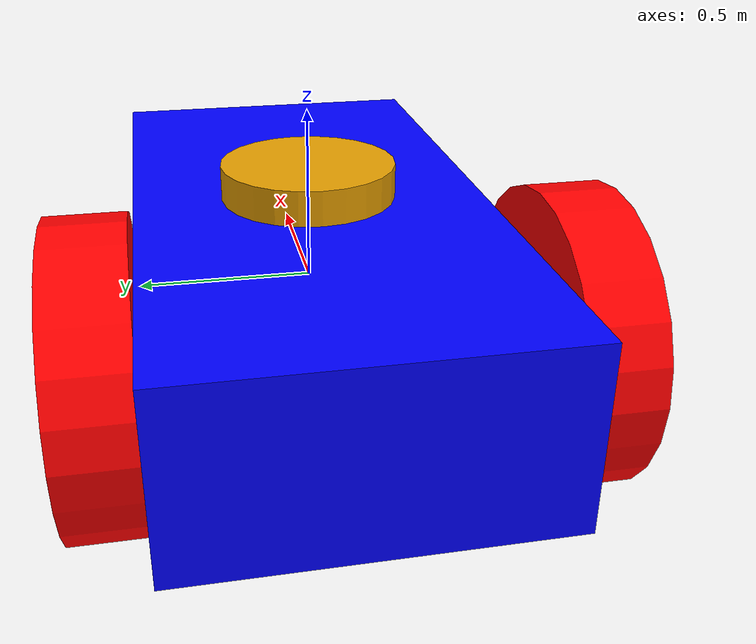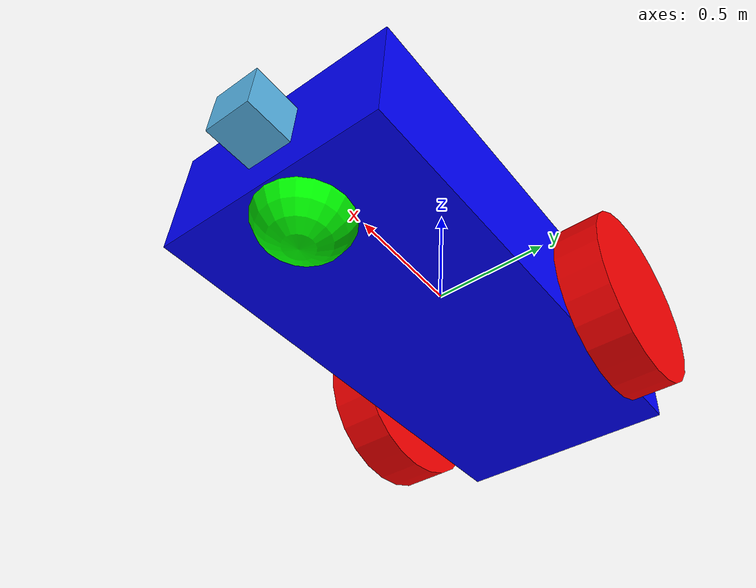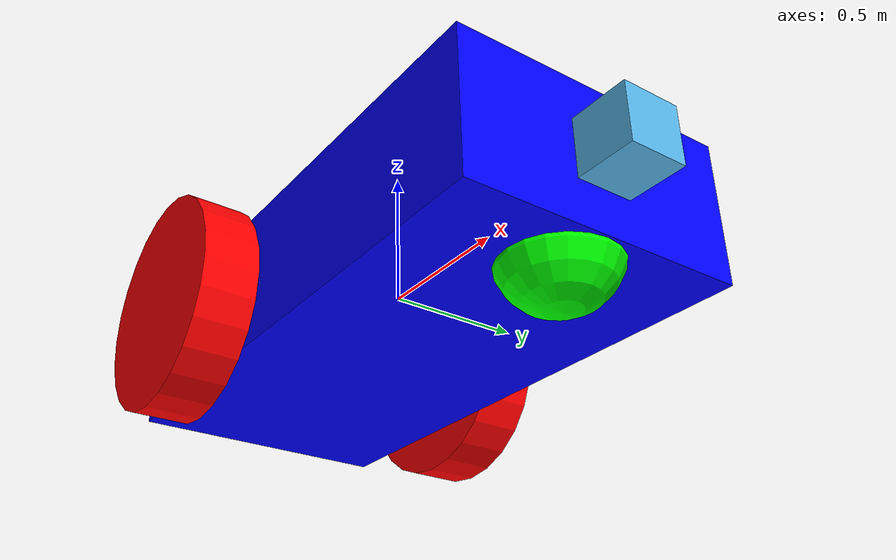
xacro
<robot xmlns:xacro="http://www.ros.org/wiki/xacro" name="rover_base2">

    <xacro:property name="x_rov" value="2.0" />
    <xacro:property name="y_rov" value="1.0" />
    <xacro:property name="z_rov" value="0.5" />

    <xacro:arg name="robot_name" default="" />

    <material name="blue">
      <color rgba="0.0 0.0 1.0 1" />
    </material>
    <material name="red">
      <color rgba="1.0 0.0 0.0 1" />
    </material>
    <material name="green">
      <color rgba="0.0 1.0 0.0 1" />
    </material>

    <link name="base_footprint" />

    <joint name="$(arg robot_name)base_link_to_chassis" type="fixed">
        <child link="base_footprint" />
        <parent link="$(arg robot_name)chassis" />
        <origin xyz="0 0 0 " rpy="0 0 0" />
    </joint>

    <link name="$(arg robot_name)chassis">
        <inertial>
            <mass value="1.14395" />
            <inertia ixx="0.126164" ixy="0" ixz="0" iyy="0.416519" iyz="0" izz="0.481014" />
        </inertial>
        <visual name="visual">
            <geometry>
                <box size="${x_rov} ${y_rov} ${z_rov}" />
            </geometry>
            <material name="blue" />
        </visual>
        <collision name="collision">
            <geometry>
                <box size="${x_rov} ${y_rov} ${z_rov}" />
            </geometry>
        </collision>
    </link>

    <xacro:macro name="rear_wheel" params="prefix reflect">
        <link name="${prefix}_wheel">
            <inertial>
                <mass value="2" />
                <inertia ixx="0.145833" ixy="0" ixz="0" iyy="0.145833" iyz="0" izz="0.125" />
            </inertial>
            <visual>
                <geometry>
                    <cylinder radius="${z_rov*4/5}" length="${y_rov/5}" />
                </geometry>
            <material name="red" />
            </visual>
            <collision name="collision">
                <geometry>
                    <cylinder radius="${z_rov*4/5}" length="${y_rov/5}" />
                </geometry>
            </collision>
        </link>

        <joint name="${prefix}_wheel_joint" type="continuous">
            <parent link="$(arg robot_name)chassis" />
            <child link="${prefix}_wheel" />
            <origin xyz="${-x_rov/4} ${reflect*y_rov*(1/2+1/10)} 0 " rpy="${-pi/2} 0 0" />
            <axis xyz="0 0 1" />
        </joint>

    </xacro:macro>

    <xacro:rear_wheel prefix="$(arg robot_name)left" reflect="1" />
    <xacro:rear_wheel prefix="$(arg robot_name)right" reflect="-1" />

    <link name="$(arg robot_name)caster">
        <inertial>
            <mass value="1" />
            <inertia ixx="0.1" ixy="0" ixz="0" iyy="0.1" iyz="0" izz="0.1" />
        </inertial>
        <visual name="visual">
            <geometry>
                <sphere radius="${z_rov*2/5}" />
            </geometry>
            <material name="green" />
        </visual>
        <collision name="collision">
            <geometry>
                <sphere radius="${z_rov*2/5}" />
            </geometry>
        </collision>
    </link>

    <link name="$(arg robot_name)inter1">
        <inertial>
            <mass value="0.01" />
            <inertia ixx="0.0000001" ixy="0" ixz="0" iyy="0.0000001" iyz="0" izz="0.0000001" />
        </inertial>
    </link>

    <link name="$(arg robot_name)inter2">
        <inertial>
            <mass value="0.01" />
            <inertia ixx="0.0000001" ixy="0" ixz="0" iyy="0.0000001" iyz="0" izz="0.0000001" />
        </inertial>
    </link>

    <joint name="$(arg robot_name)caster_x" type="continuous">
        <origin xyz="${x_rov*0.4}  0 ${-z_rov*2/5}" rpy="0 0 0" />
        <parent link="$(arg robot_name)chassis" />
        <child link="$(arg robot_name)inter1" />
        <axis xyz="1 0 0" />
    </joint>

    <joint name="$(arg robot_name)caster_y" type="continuous">
        <parent link="$(arg robot_name)inter1" />
        <child link="$(arg robot_name)inter2" />
        <axis xyz="0 1 0" />
    </joint>

    <joint name="$(arg robot_name)caster_z" type="continuous">
        <parent link="$(arg robot_name)inter2" />
        <child link="$(arg robot_name)caster" />
        <axis xyz="0 0 1" />
    </joint>

    <link name="$(arg robot_name)imu_link">

        <inertial>
            <mass value="0.01" />
            <inertia ixx="0.0000001" ixy="0" ixz="0" iyy="0.0000001" iyz="0" izz="0.0000001" />
        </inertial>

        <visual>
            <geometry>
                <box size="0.1 0.1 0.1" />
            </geometry>
        </visual>

        <collision>
            <geometry>
                <box size="0.1 0.1 0.1" />
            </geometry>
        </collision>

    </link>

    <joint name="$(arg robot_name)imu_joint" type="fixed">
        <parent link="$(arg robot_name)chassis" />
        <child link="$(arg robot_name)imu_link" />
        <origin xyz="0 0 0.01" />
    </joint>

    <link name="$(arg robot_name)lidar_link">

        <inertial>
            <mass value="0.125"/>
            <inertia ixx="0.001"  ixy="0"  ixz="0" iyy="0.001" iyz="0" izz="0.001" />
        </inertial>

        <visual>
            <geometry>
                <cylinder radius="${y_rov*1/4}" length="${z_rov*1/5}"/>
            </geometry>
        </visual>

        <collision>
            <geometry>
                <cylinder radius="${y_rov*1/4}" length="${z_rov*1/5}"/>
            </geometry>
        </collision>

    </link>

    <joint name="lidar_joint" type="fixed">
        <parent link="$(arg robot_name)chassis" />
        <child link="$(arg robot_name)lidar_link" />
        <origin xyz="0 0 ${z_rov/2 + z_rov*1/10}" rpy="0 0 0"/>
    </joint>

    <link name="$(arg robot_name)camera_link">

        <inertial>
            <mass value="0.125"/>
            <inertia ixx="0.001"  ixy="0"  ixz="0" iyy="0.001" iyz="0" izz="0.001" />
        </inertial>

        <visual>
            <geometry>
                <box size="0.2 0.2 0.2" />
            </geometry>
        </visual>

        <collision>
            <geometry>
                <box size="0.2 0.2 0.2" />
            </geometry>
        </collision>

    </link>

    <joint name="camera_joint" type="fixed">
        <parent link="$(arg robot_name)chassis" />
        <child link="$(arg robot_name)camera_link" />
        <origin xyz="${x_rov/2 + 0.1} 0 0" rpy="0 0 0"/>
    </joint>

</robot>
